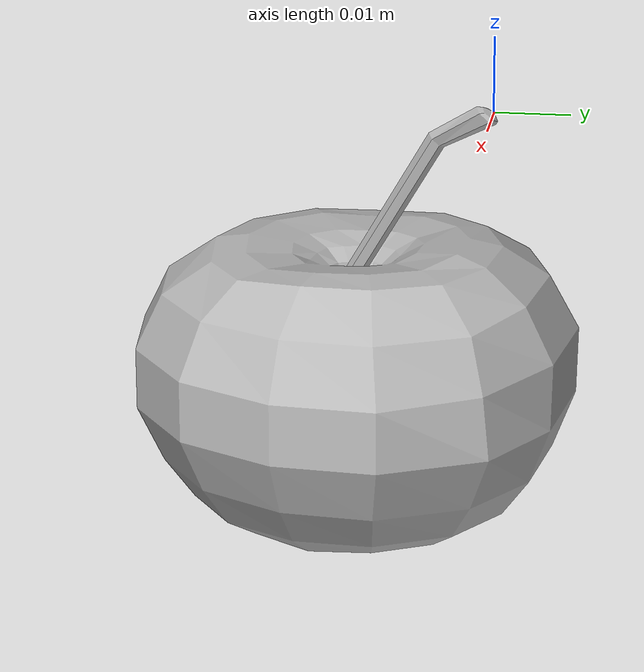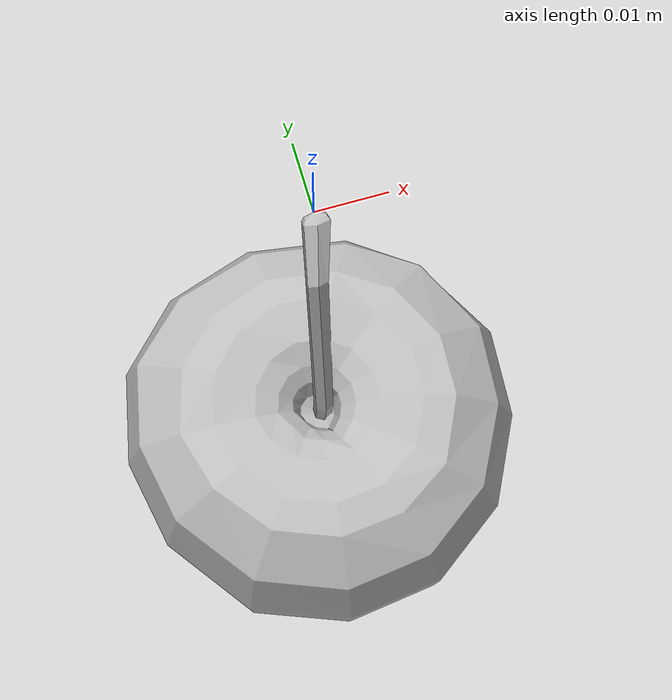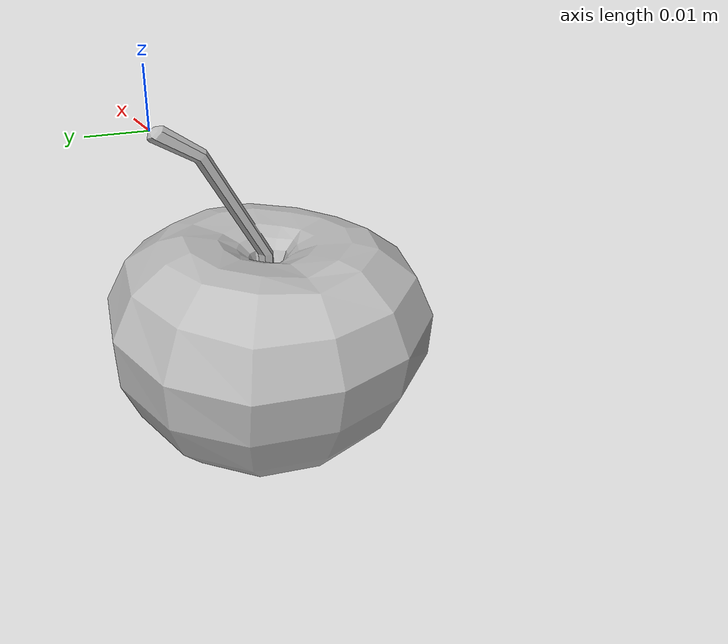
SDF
<?xml version='1.0'?>
<sdf version='1.6'>
      <model name=''>
      <link name=''>
        <pose frame=''>0 0 0 0 -0 0</pose>
        <inertial>
          <pose frame=''>0 0 0 0 -0 0</pose>
          <mass>1</mass>
          <inertia>
            <ixx>1</ixx>
            <ixy>0</ixy>
            <ixz>0</ixz>
            <iyy>1</iyy>
            <iyz>0</iyz>
            <izz>1</izz>
          </inertia>
        </inertial>
        <collision name=''>
          <pose frame=''>0 0 0 0 -0 0</pose>
          <geometry>
            <mesh>
              <scale>1 1 1</scale>
              <uri>model://apple/meshes/apple.dae</uri>
            </mesh>
          </geometry>
          <max_contacts>10</max_contacts>
          <surface>
            <contact>
              <ode/>
            </contact>
            <bounce/>
            <friction>
              <torsional>
                <ode/>
              </torsional>
              <ode/>
            </friction>
          </surface>
        </collision>
        <visual name=''>
          <pose frame=''>0 0 0 0 -0 0</pose>
          <geometry>
            <mesh>
              <scale>1 1 1</scale>
              <uri>model://apple/meshes/apple.dae</uri>
            </mesh>
          </geometry>
        </visual>
        <self_collide>0</self_collide>
        <enable_wind>0</enable_wind>
        <kinematic>0</kinematic>
      </link>
      <static>1</static>
    </model>
</sdf>
